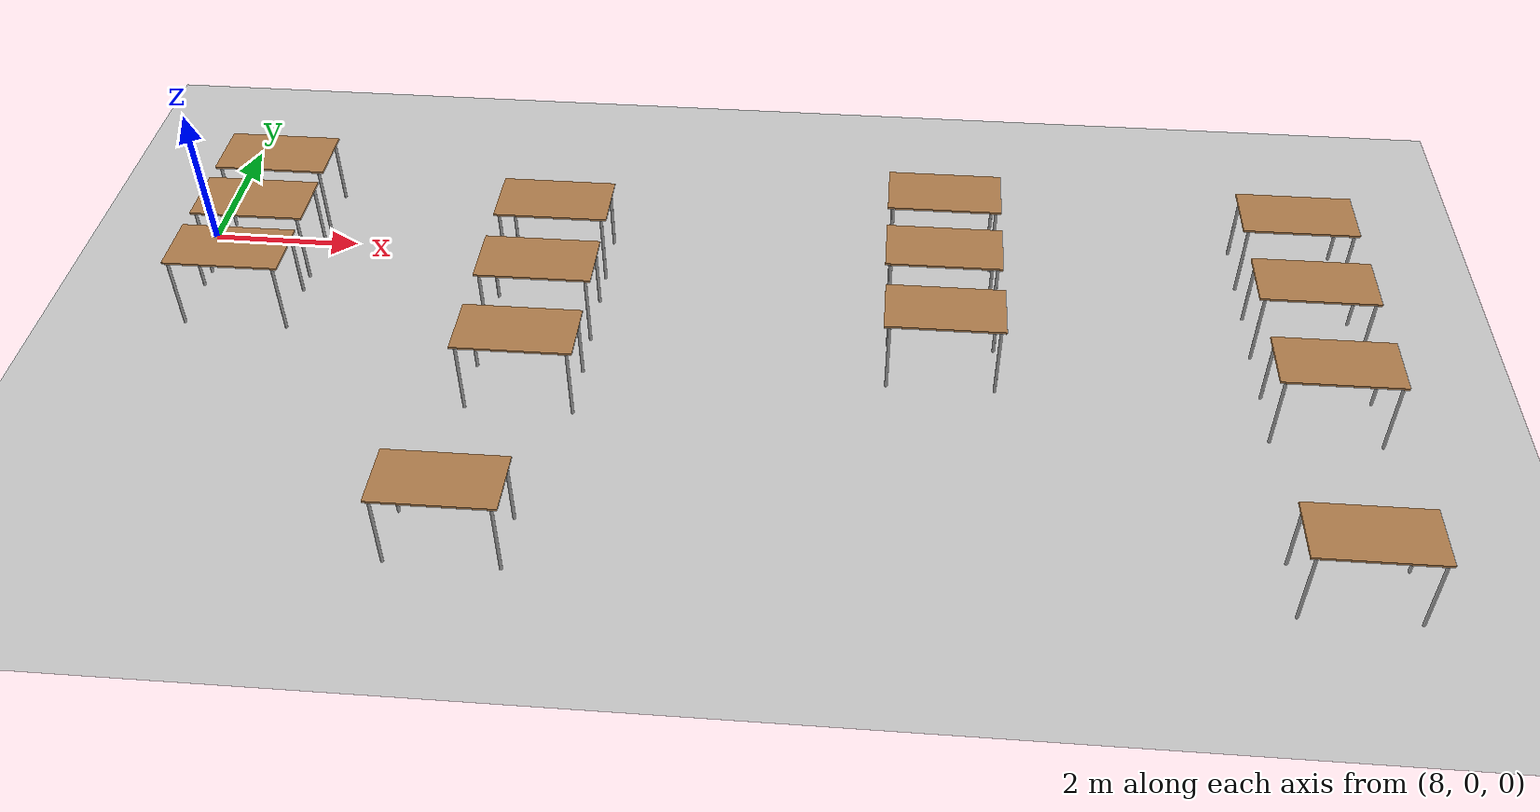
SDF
<sdf version="1.7">
 <world name="default">
  <light name="sun" type="directional">
   <cast_shadows>0</cast_shadows>
   <pose>0 0 10 0 -0 0</pose>
   <diffuse>0.8 0.8 0.8 1</diffuse>
   <specular>0.2 0.2 0.2 1</specular>
   <attenuation>
    <range>1000</range>
    <constant>0.9</constant>
    <linear>0.01</linear>
    <quadratic>0.001</quadratic>
   </attenuation>
   <direction>-0.5 0.1 -0.9</direction>
   <spot><inner_angle>0</inner_angle><outer_angle>0</outer_angle><falloff>0</falloff></spot>
  </light>
  <plugin name="ActorPosesPlugin" filename="libActorPosesPlugin.so"/>
  <model name="ground_plane">
   <static>1</static>
   <link name="link">
    <collision name="collision">
     <geometry><plane><normal>0 0 1</normal><size>100 100</size></plane></geometry>
     <surface><friction><ode><mu>100</mu><mu2>50</mu2></ode></friction></surface>
    </collision>
    <visual name="visual">
     <cast_shadows>0</cast_shadows>
     <geometry><plane><normal>0 0 1</normal><size>100 100</size></plane></geometry>
     <material>
      <script><uri>file://media/materials/scripts/gazebo.material</uri><name>Gazebo/Grey</name></script>
     </material>
    </visual>
   </link>
  </model>
  <gravity>0 0 -9.8</gravity>
  <magnetic_field>6e-06 2.3e-05 -4.2e-05</magnetic_field>
  <atmosphere type="adiabatic"/>
  <physics name="default_physics" default="0" type="ode">
   <max_step_size>0.001</max_step_size>
   <real_time_factor>1</real_time_factor>
   <real_time_update_rate>1000</real_time_update_rate>
  </physics>
  <scene><ambient>0.4 0.4 0.4 1</ambient><background>0.7 0.7 0.7 1</background><shadows>0</shadows></scene>
  <spherical_coordinates>
   <surface_model>EARTH_WGS84</surface_model>
   <latitude_deg>0</latitude_deg>
   <longitude_deg>0</longitude_deg>
   <elevation>0</elevation>
   <heading_deg>0</heading_deg>
  </spherical_coordinates>
  <model name="table">
   <static>1</static>
   <link name="link">
    <collision name="surface">
     <pose>0 0 1 0 -0 0</pose>
     <geometry><box><size>1.5 0.8 0.03</size></box></geometry>
     <surface><friction><ode><mu>0.6</mu><mu2>0.6</mu2></ode></friction></surface>
    </collision>
    <visual name="visual1">
     <pose>0 0 1 0 -0 0</pose>
     <geometry><box><size>1.5 0.8 0.03</size></box></geometry>
     <material>
      <script><uri>file://media/materials/scripts/gazebo.material</uri><name>Gazebo/Wood</name></script>
     </material>
    </visual>
    <collision name="front_left_leg">
     <pose>0.68 0.38 0.5 0 -0 0</pose>
     <geometry><cylinder><radius>0.02</radius><length>1</length></cylinder></geometry>
    </collision>
    <visual name="front_left_leg">
     <pose>0.68 0.38 0.5 0 -0 0</pose>
     <geometry><cylinder><radius>0.02</radius><length>1</length></cylinder></geometry>
     <material>
      <script><uri>file://media/materials/scripts/gazebo.material</uri><name>Gazebo/Grey</name></script>
     </material>
    </visual>
    <collision name="front_right_leg">
     <pose>0.68 -0.38 0.5 0 -0 0</pose>
     <geometry><cylinder><radius>0.02</radius><length>1</length></cylinder></geometry>
    </collision>
    <visual name="front_right_leg">
     <pose>0.68 -0.38 0.5 0 -0 0</pose>
     <geometry><cylinder><radius>0.02</radius><length>1</length></cylinder></geometry>
     <material>
      <script><uri>file://media/materials/scripts/gazebo.material</uri><name>Gazebo/Grey</name></script>
     </material>
    </visual>
    <collision name="back_right_leg">
     <pose>-0.68 -0.38 0.5 0 -0 0</pose>
     <geometry><cylinder><radius>0.02</radius><length>1</length></cylinder></geometry>
    </collision>
    <visual name="back_right_leg">
     <pose>-0.68 -0.38 0.5 0 -0 0</pose>
     <geometry><cylinder><radius>0.02</radius><length>1</length></cylinder></geometry>
     <material>
      <script><uri>file://media/materials/scripts/gazebo.material</uri><name>Gazebo/Grey</name></script>
     </material>
    </visual>
    <collision name="back_left_leg">
     <pose>-0.68 0.38 0.5 0 -0 0</pose>
     <geometry><cylinder><radius>0.02</radius><length>1</length></cylinder></geometry>
    </collision>
    <visual name="back_left_leg">
     <pose>-0.68 0.38 0.5 0 -0 0</pose>
     <geometry><cylinder><radius>0.02</radius><length>1</length></cylinder></geometry>
     <material>
      <script><uri>file://media/materials/scripts/gazebo.material</uri><name>Gazebo/Grey</name></script>
     </material>
    </visual>
   </link>
   <pose>18.0835 -1.89229 0 0 -0 0</pose>
  </model>
  <model name="table_0">
   <static>1</static>
   <link name="link">
    <collision name="surface">
     <pose>0 0 1 0 -0 0</pose>
     <geometry><box><size>1.5 0.8 0.03</size></box></geometry>
     <surface><friction><ode><mu>0.6</mu><mu2>0.6</mu2></ode></friction></surface>
    </collision>
    <visual name="visual1">
     <pose>0 0 1 0 -0 0</pose>
     <geometry><box><size>1.5 0.8 0.03</size></box></geometry>
     <material>
      <script><uri>file://media/materials/scripts/gazebo.material</uri><name>Gazebo/Wood</name></script>
     </material>
    </visual>
    <collision name="front_left_leg">
     <pose>0.68 0.38 0.5 0 -0 0</pose>
     <geometry><cylinder><radius>0.02</radius><length>1</length></cylinder></geometry>
    </collision>
    <visual name="front_left_leg">
     <pose>0.68 0.38 0.5 0 -0 0</pose>
     <geometry><cylinder><radius>0.02</radius><length>1</length></cylinder></geometry>
     <material>
      <script><uri>file://media/materials/scripts/gazebo.material</uri><name>Gazebo/Grey</name></script>
     </material>
    </visual>
    <collision name="front_right_leg">
     <pose>0.68 -0.38 0.5 0 -0 0</pose>
     <geometry><cylinder><radius>0.02</radius><length>1</length></cylinder></geometry>
    </collision>
    <visual name="front_right_leg">
     <pose>0.68 -0.38 0.5 0 -0 0</pose>
     <geometry><cylinder><radius>0.02</radius><length>1</length></cylinder></geometry>
     <material>
      <script><uri>file://media/materials/scripts/gazebo.material</uri><name>Gazebo/Grey</name></script>
     </material>
    </visual>
    <collision name="back_right_leg">
     <pose>-0.68 -0.38 0.5 0 -0 0</pose>
     <geometry><cylinder><radius>0.02</radius><length>1</length></cylinder></geometry>
    </collision>
    <visual name="back_right_leg">
     <pose>-0.68 -0.38 0.5 0 -0 0</pose>
     <geometry><cylinder><radius>0.02</radius><length>1</length></cylinder></geometry>
     <material>
      <script><uri>file://media/materials/scripts/gazebo.material</uri><name>Gazebo/Grey</name></script>
     </material>
    </visual>
    <collision name="back_left_leg">
     <pose>-0.68 0.38 0.5 0 -0 0</pose>
     <geometry><cylinder><radius>0.02</radius><length>1</length></cylinder></geometry>
    </collision>
    <visual name="back_left_leg">
     <pose>-0.68 0.38 0.5 0 -0 0</pose>
     <geometry><cylinder><radius>0.02</radius><length>1</length></cylinder></geometry>
     <material>
      <script><uri>file://media/materials/scripts/gazebo.material</uri><name>Gazebo/Grey</name></script>
     </material>
    </visual>
   </link>
   <pose>8.861 -1.41423 0 0 -0 0</pose>
  </model>
  <model name="table_clone">
   <static>1</static>
   <link name="link">
    <collision name="surface">
     <pose>0 0 1 0 -0 0</pose>
     <geometry><box><size>1.5 0.8 0.03</size></box></geometry>
     <surface><friction><ode><mu>0.6</mu><mu2>0.6</mu2></ode></friction></surface>
    </collision>
    <visual name="visual1">
     <pose>0 0 1 0 -0 0</pose>
     <geometry><box><size>1.5 0.8 0.03</size></box></geometry>
     <material>
      <script><uri>file://media/materials/scripts/gazebo.material</uri><name>Gazebo/Wood</name></script>
     </material>
    </visual>
    <collision name="front_left_leg">
     <pose>0.68 0.38 0.5 0 -0 0</pose>
     <geometry><cylinder><radius>0.02</radius><length>1</length></cylinder></geometry>
    </collision>
    <visual name="front_left_leg">
     <pose>0.68 0.38 0.5 0 -0 0</pose>
     <geometry><cylinder><radius>0.02</radius><length>1</length></cylinder></geometry>
     <material>
      <script><uri>file://media/materials/scripts/gazebo.material</uri><name>Gazebo/Grey</name></script>
     </material>
    </visual>
    <collision name="front_right_leg">
     <pose>0.68 -0.38 0.5 0 -0 0</pose>
     <geometry><cylinder><radius>0.02</radius><length>1</length></cylinder></geometry>
    </collision>
    <visual name="front_right_leg">
     <pose>0.68 -0.38 0.5 0 -0 0</pose>
     <geometry><cylinder><radius>0.02</radius><length>1</length></cylinder></geometry>
     <material>
      <script><uri>file://media/materials/scripts/gazebo.material</uri><name>Gazebo/Grey</name></script>
     </material>
    </visual>
    <collision name="back_right_leg">
     <pose>-0.68 -0.38 0.5 0 -0 0</pose>
     <geometry><cylinder><radius>0.02</radius><length>1</length></cylinder></geometry>
    </collision>
    <visual name="back_right_leg">
     <pose>-0.68 -0.38 0.5 0 -0 0</pose>
     <geometry><cylinder><radius>0.02</radius><length>1</length></cylinder></geometry>
     <material>
      <script><uri>file://media/materials/scripts/gazebo.material</uri><name>Gazebo/Grey</name></script>
     </material>
    </visual>
    <collision name="back_left_leg">
     <pose>-0.68 0.38 0.5 0 -0 0</pose>
     <geometry><cylinder><radius>0.02</radius><length>1</length></cylinder></geometry>
    </collision>
    <visual name="back_left_leg">
     <pose>-0.68 0.38 0.5 0 -0 0</pose>
     <geometry><cylinder><radius>0.02</radius><length>1</length></cylinder></geometry>
     <material>
      <script><uri>file://media/materials/scripts/gazebo.material</uri><name>Gazebo/Grey</name></script>
     </material>
    </visual>
   </link>
   <pose>22.7297 -0.994147 0 0 -0 0</pose>
  </model>
  <model name="table_clone_0">
   <static>1</static>
   <link name="link">
    <collision name="surface">
     <pose>0 0 1 0 -0 0</pose>
     <geometry><box><size>1.5 0.8 0.03</size></box></geometry>
     <surface><friction><ode><mu>0.6</mu><mu2>0.6</mu2></ode></friction></surface>
    </collision>
    <visual name="visual1">
     <pose>0 0 1 0 -0 0</pose>
     <geometry><box><size>1.5 0.8 0.03</size></box></geometry>
     <material>
      <script><uri>file://media/materials/scripts/gazebo.material</uri><name>Gazebo/Wood</name></script>
     </material>
    </visual>
    <collision name="front_left_leg">
     <pose>0.68 0.38 0.5 0 -0 0</pose>
     <geometry><cylinder><radius>0.02</radius><length>1</length></cylinder></geometry>
    </collision>
    <visual name="front_left_leg">
     <pose>0.68 0.38 0.5 0 -0 0</pose>
     <geometry><cylinder><radius>0.02</radius><length>1</length></cylinder></geometry>
     <material>
      <script><uri>file://media/materials/scripts/gazebo.material</uri><name>Gazebo/Grey</name></script>
     </material>
    </visual>
    <collision name="front_right_leg">
     <pose>0.68 -0.38 0.5 0 -0 0</pose>
     <geometry><cylinder><radius>0.02</radius><length>1</length></cylinder></geometry>
    </collision>
    <visual name="front_right_leg">
     <pose>0.68 -0.38 0.5 0 -0 0</pose>
     <geometry><cylinder><radius>0.02</radius><length>1</length></cylinder></geometry>
     <material>
      <script><uri>file://media/materials/scripts/gazebo.material</uri><name>Gazebo/Grey</name></script>
     </material>
    </visual>
    <collision name="back_right_leg">
     <pose>-0.68 -0.38 0.5 0 -0 0</pose>
     <geometry><cylinder><radius>0.02</radius><length>1</length></cylinder></geometry>
    </collision>
    <visual name="back_right_leg">
     <pose>-0.68 -0.38 0.5 0 -0 0</pose>
     <geometry><cylinder><radius>0.02</radius><length>1</length></cylinder></geometry>
     <material>
      <script><uri>file://media/materials/scripts/gazebo.material</uri><name>Gazebo/Grey</name></script>
     </material>
    </visual>
    <collision name="back_left_leg">
     <pose>-0.68 0.38 0.5 0 -0 0</pose>
     <geometry><cylinder><radius>0.02</radius><length>1</length></cylinder></geometry>
    </collision>
    <visual name="back_left_leg">
     <pose>-0.68 0.38 0.5 0 -0 0</pose>
     <geometry><cylinder><radius>0.02</radius><length>1</length></cylinder></geometry>
     <material>
      <script><uri>file://media/materials/scripts/gazebo.material</uri><name>Gazebo/Grey</name></script>
     </material>
    </visual>
   </link>
   <pose>22.6623 -5.21389 0 0 -0 0</pose>
  </model>
  <model name="table_clone_1">
   <static>1</static>
   <link name="link">
    <collision name="surface">
     <pose>0 0 1 0 -0 0</pose>
     <geometry><box><size>1.5 0.8 0.03</size></box></geometry>
     <surface><friction><ode><mu>0.6</mu><mu2>0.6</mu2></ode></friction></surface>
    </collision>
    <visual name="visual1">
     <pose>0 0 1 0 -0 0</pose>
     <geometry><box><size>1.5 0.8 0.03</size></box></geometry>
     <material>
      <script><uri>file://media/materials/scripts/gazebo.material</uri><name>Gazebo/Wood</name></script>
     </material>
    </visual>
    <collision name="front_left_leg">
     <pose>0.68 0.38 0.5 0 -0 0</pose>
     <geometry><cylinder><radius>0.02</radius><length>1</length></cylinder></geometry>
    </collision>
    <visual name="front_left_leg">
     <pose>0.68 0.38 0.5 0 -0 0</pose>
     <geometry><cylinder><radius>0.02</radius><length>1</length></cylinder></geometry>
     <material>
      <script><uri>file://media/materials/scripts/gazebo.material</uri><name>Gazebo/Grey</name></script>
     </material>
    </visual>
    <collision name="front_right_leg">
     <pose>0.68 -0.38 0.5 0 -0 0</pose>
     <geometry><cylinder><radius>0.02</radius><length>1</length></cylinder></geometry>
    </collision>
    <visual name="front_right_leg">
     <pose>0.68 -0.38 0.5 0 -0 0</pose>
     <geometry><cylinder><radius>0.02</radius><length>1</length></cylinder></geometry>
     <material>
      <script><uri>file://media/materials/scripts/gazebo.material</uri><name>Gazebo/Grey</name></script>
     </material>
    </visual>
    <collision name="back_right_leg">
     <pose>-0.68 -0.38 0.5 0 -0 0</pose>
     <geometry><cylinder><radius>0.02</radius><length>1</length></cylinder></geometry>
    </collision>
    <visual name="back_right_leg">
     <pose>-0.68 -0.38 0.5 0 -0 0</pose>
     <geometry><cylinder><radius>0.02</radius><length>1</length></cylinder></geometry>
     <material>
      <script><uri>file://media/materials/scripts/gazebo.material</uri><name>Gazebo/Grey</name></script>
     </material>
    </visual>
    <collision name="back_left_leg">
     <pose>-0.68 0.38 0.5 0 -0 0</pose>
     <geometry><cylinder><radius>0.02</radius><length>1</length></cylinder></geometry>
    </collision>
    <visual name="back_left_leg">
     <pose>-0.68 0.38 0.5 0 -0 0</pose>
     <geometry><cylinder><radius>0.02</radius><length>1</length></cylinder></geometry>
     <material>
      <script><uri>file://media/materials/scripts/gazebo.material</uri><name>Gazebo/Grey</name></script>
     </material>
    </visual>
   </link>
   <pose>12.8735 -1.32859 0 0 -0 0</pose>
  </model>
  <model name="table_clone_2">
   <static>1</static>
   <link name="link">
    <collision name="surface">
     <pose>0 0 1 0 -0 0</pose>
     <geometry><box><size>1.5 0.8 0.03</size></box></geometry>
     <surface><friction><ode><mu>0.6</mu><mu2>0.6</mu2></ode></friction></surface>
    </collision>
    <visual name="visual1">
     <pose>0 0 1 0 -0 0</pose>
     <geometry><box><size>1.5 0.8 0.03</size></box></geometry>
     <material>
      <script><uri>file://media/materials/scripts/gazebo.material</uri><name>Gazebo/Wood</name></script>
     </material>
    </visual>
    <collision name="front_left_leg">
     <pose>0.68 0.38 0.5 0 -0 0</pose>
     <geometry><cylinder><radius>0.02</radius><length>1</length></cylinder></geometry>
    </collision>
    <visual name="front_left_leg">
     <pose>0.68 0.38 0.5 0 -0 0</pose>
     <geometry><cylinder><radius>0.02</radius><length>1</length></cylinder></geometry>
     <material>
      <script><uri>file://media/materials/scripts/gazebo.material</uri><name>Gazebo/Grey</name></script>
     </material>
    </visual>
    <collision name="front_right_leg">
     <pose>0.68 -0.38 0.5 0 -0 0</pose>
     <geometry><cylinder><radius>0.02</radius><length>1</length></cylinder></geometry>
    </collision>
    <visual name="front_right_leg">
     <pose>0.68 -0.38 0.5 0 -0 0</pose>
     <geometry><cylinder><radius>0.02</radius><length>1</length></cylinder></geometry>
     <material>
      <script><uri>file://media/materials/scripts/gazebo.material</uri><name>Gazebo/Grey</name></script>
     </material>
    </visual>
    <collision name="back_right_leg">
     <pose>-0.68 -0.38 0.5 0 -0 0</pose>
     <geometry><cylinder><radius>0.02</radius><length>1</length></cylinder></geometry>
    </collision>
    <visual name="back_right_leg">
     <pose>-0.68 -0.38 0.5 0 -0 0</pose>
     <geometry><cylinder><radius>0.02</radius><length>1</length></cylinder></geometry>
     <material>
      <script><uri>file://media/materials/scripts/gazebo.material</uri><name>Gazebo/Grey</name></script>
     </material>
    </visual>
    <collision name="back_left_leg">
     <pose>-0.68 0.38 0.5 0 -0 0</pose>
     <geometry><cylinder><radius>0.02</radius><length>1</length></cylinder></geometry>
    </collision>
    <visual name="back_left_leg">
     <pose>-0.68 0.38 0.5 0 -0 0</pose>
     <geometry><cylinder><radius>0.02</radius><length>1</length></cylinder></geometry>
     <material>
      <script><uri>file://media/materials/scripts/gazebo.material</uri><name>Gazebo/Grey</name></script>
     </material>
    </visual>
   </link>
   <pose>12.4984 -5.23786 0 0 -0 0</pose>
  </model>
  <model name="table_clone_3">
   <static>1</static>
   <link name="link">
    <collision name="surface">
     <pose>0 0 1 0 -0 0</pose>
     <geometry><box><size>1.5 0.8 0.03</size></box></geometry>
     <surface><friction><ode><mu>0.6</mu><mu2>0.6</mu2></ode></friction></surface>
    </collision>
    <visual name="visual1">
     <pose>0 0 1 0 -0 0</pose>
     <geometry><box><size>1.5 0.8 0.03</size></box></geometry>
     <material>
      <script><uri>file://media/materials/scripts/gazebo.material</uri><name>Gazebo/Wood</name></script>
     </material>
    </visual>
    <collision name="front_left_leg">
     <pose>0.68 0.38 0.5 0 -0 0</pose>
     <geometry><cylinder><radius>0.02</radius><length>1</length></cylinder></geometry>
    </collision>
    <visual name="front_left_leg">
     <pose>0.68 0.38 0.5 0 -0 0</pose>
     <geometry><cylinder><radius>0.02</radius><length>1</length></cylinder></geometry>
     <material>
      <script><uri>file://media/materials/scripts/gazebo.material</uri><name>Gazebo/Grey</name></script>
     </material>
    </visual>
    <collision name="front_right_leg">
     <pose>0.68 -0.38 0.5 0 -0 0</pose>
     <geometry><cylinder><radius>0.02</radius><length>1</length></cylinder></geometry>
    </collision>
    <visual name="front_right_leg">
     <pose>0.68 -0.38 0.5 0 -0 0</pose>
     <geometry><cylinder><radius>0.02</radius><length>1</length></cylinder></geometry>
     <material>
      <script><uri>file://media/materials/scripts/gazebo.material</uri><name>Gazebo/Grey</name></script>
     </material>
    </visual>
    <collision name="back_right_leg">
     <pose>-0.68 -0.38 0.5 0 -0 0</pose>
     <geometry><cylinder><radius>0.02</radius><length>1</length></cylinder></geometry>
    </collision>
    <visual name="back_right_leg">
     <pose>-0.68 -0.38 0.5 0 -0 0</pose>
     <geometry><cylinder><radius>0.02</radius><length>1</length></cylinder></geometry>
     <material>
      <script><uri>file://media/materials/scripts/gazebo.material</uri><name>Gazebo/Grey</name></script>
     </material>
    </visual>
    <collision name="back_left_leg">
     <pose>-0.68 0.38 0.5 0 -0 0</pose>
     <geometry><cylinder><radius>0.02</radius><length>1</length></cylinder></geometry>
    </collision>
    <visual name="back_left_leg">
     <pose>-0.68 0.38 0.5 0 -0 0</pose>
     <geometry><cylinder><radius>0.02</radius><length>1</length></cylinder></geometry>
     <material>
      <script><uri>file://media/materials/scripts/gazebo.material</uri><name>Gazebo/Grey</name></script>
     </material>
    </visual>
   </link>
   <pose>22.7128 0.380865 0 0 -0 0</pose>
  </model>
  <model name="table_clone_4">
   <static>1</static>
   <link name="link">
    <collision name="surface">
     <pose>0 0 1 0 -0 0</pose>
     <geometry><box><size>1.5 0.8 0.03</size></box></geometry>
     <surface><friction><ode><mu>0.6</mu><mu2>0.6</mu2></ode></friction></surface>
    </collision>
    <visual name="visual1">
     <pose>0 0 1 0 -0 0</pose>
     <geometry><box><size>1.5 0.8 0.03</size></box></geometry>
     <material>
      <script><uri>file://media/materials/scripts/gazebo.material</uri><name>Gazebo/Wood</name></script>
     </material>
    </visual>
    <collision name="front_left_leg">
     <pose>0.68 0.38 0.5 0 -0 0</pose>
     <geometry><cylinder><radius>0.02</radius><length>1</length></cylinder></geometry>
    </collision>
    <visual name="front_left_leg">
     <pose>0.68 0.38 0.5 0 -0 0</pose>
     <geometry><cylinder><radius>0.02</radius><length>1</length></cylinder></geometry>
     <material>
      <script><uri>file://media/materials/scripts/gazebo.material</uri><name>Gazebo/Grey</name></script>
     </material>
    </visual>
    <collision name="front_right_leg">
     <pose>0.68 -0.38 0.5 0 -0 0</pose>
     <geometry><cylinder><radius>0.02</radius><length>1</length></cylinder></geometry>
    </collision>
    <visual name="front_right_leg">
     <pose>0.68 -0.38 0.5 0 -0 0</pose>
     <geometry><cylinder><radius>0.02</radius><length>1</length></cylinder></geometry>
     <material>
      <script><uri>file://media/materials/scripts/gazebo.material</uri><name>Gazebo/Grey</name></script>
     </material>
    </visual>
    <collision name="back_right_leg">
     <pose>-0.68 -0.38 0.5 0 -0 0</pose>
     <geometry><cylinder><radius>0.02</radius><length>1</length></cylinder></geometry>
    </collision>
    <visual name="back_right_leg">
     <pose>-0.68 -0.38 0.5 0 -0 0</pose>
     <geometry><cylinder><radius>0.02</radius><length>1</length></cylinder></geometry>
     <material>
      <script><uri>file://media/materials/scripts/gazebo.material</uri><name>Gazebo/Grey</name></script>
     </material>
    </visual>
    <collision name="back_left_leg">
     <pose>-0.68 0.38 0.5 0 -0 0</pose>
     <geometry><cylinder><radius>0.02</radius><length>1</length></cylinder></geometry>
    </collision>
    <visual name="back_left_leg">
     <pose>-0.68 0.38 0.5 0 -0 0</pose>
     <geometry><cylinder><radius>0.02</radius><length>1</length></cylinder></geometry>
     <material>
      <script><uri>file://media/materials/scripts/gazebo.material</uri><name>Gazebo/Grey</name></script>
     </material>
    </visual>
   </link>
   <pose>12.8763 -0.068585 0 0 -0 0</pose>
  </model>
  <model name="table_clone_5">
   <static>1</static>
   <link name="link">
    <collision name="surface">
     <pose>0 0 1 0 -0 0</pose>
     <geometry><box><size>1.5 0.8 0.03</size></box></geometry>
     <surface><friction><ode><mu>0.6</mu><mu2>0.6</mu2></ode></friction></surface>
    </collision>
    <visual name="visual1">
     <pose>0 0 1 0 -0 0</pose>
     <geometry><box><size>1.5 0.8 0.03</size></box></geometry>
     <material>
      <script><uri>file://media/materials/scripts/gazebo.material</uri><name>Gazebo/Wood</name></script>
     </material>
    </visual>
    <collision name="front_left_leg">
     <pose>0.68 0.38 0.5 0 -0 0</pose>
     <geometry><cylinder><radius>0.02</radius><length>1</length></cylinder></geometry>
    </collision>
    <visual name="front_left_leg">
     <pose>0.68 0.38 0.5 0 -0 0</pose>
     <geometry><cylinder><radius>0.02</radius><length>1</length></cylinder></geometry>
     <material>
      <script><uri>file://media/materials/scripts/gazebo.material</uri><name>Gazebo/Grey</name></script>
     </material>
    </visual>
    <collision name="front_right_leg">
     <pose>0.68 -0.38 0.5 0 -0 0</pose>
     <geometry><cylinder><radius>0.02</radius><length>1</length></cylinder></geometry>
    </collision>
    <visual name="front_right_leg">
     <pose>0.68 -0.38 0.5 0 -0 0</pose>
     <geometry><cylinder><radius>0.02</radius><length>1</length></cylinder></geometry>
     <material>
      <script><uri>file://media/materials/scripts/gazebo.material</uri><name>Gazebo/Grey</name></script>
     </material>
    </visual>
    <collision name="back_right_leg">
     <pose>-0.68 -0.38 0.5 0 -0 0</pose>
     <geometry><cylinder><radius>0.02</radius><length>1</length></cylinder></geometry>
    </collision>
    <visual name="back_right_leg">
     <pose>-0.68 -0.38 0.5 0 -0 0</pose>
     <geometry><cylinder><radius>0.02</radius><length>1</length></cylinder></geometry>
     <material>
      <script><uri>file://media/materials/scripts/gazebo.material</uri><name>Gazebo/Grey</name></script>
     </material>
    </visual>
    <collision name="back_left_leg">
     <pose>-0.68 0.38 0.5 0 -0 0</pose>
     <geometry><cylinder><radius>0.02</radius><length>1</length></cylinder></geometry>
    </collision>
    <visual name="back_left_leg">
     <pose>-0.68 0.38 0.5 0 -0 0</pose>
     <geometry><cylinder><radius>0.02</radius><length>1</length></cylinder></geometry>
     <material>
      <script><uri>file://media/materials/scripts/gazebo.material</uri><name>Gazebo/Grey</name></script>
     </material>
    </visual>
   </link>
   <pose>12.8746 -2.70009 0 0 -0 0</pose>
  </model>
  <model name="table_clone_6">
   <static>1</static>
   <link name="link">
    <collision name="surface">
     <pose>0 0 1 0 -0 0</pose>
     <geometry><box><size>1.5 0.8 0.03</size></box></geometry>
     <surface><friction><ode><mu>0.6</mu><mu2>0.6</mu2></ode></friction></surface>
    </collision>
    <visual name="visual1">
     <pose>0 0 1 0 -0 0</pose>
     <geometry><box><size>1.5 0.8 0.03</size></box></geometry>
     <material>
      <script><uri>file://media/materials/scripts/gazebo.material</uri><name>Gazebo/Wood</name></script>
     </material>
    </visual>
    <collision name="front_left_leg">
     <pose>0.68 0.38 0.5 0 -0 0</pose>
     <geometry><cylinder><radius>0.02</radius><length>1</length></cylinder></geometry>
    </collision>
    <visual name="front_left_leg">
     <pose>0.68 0.38 0.5 0 -0 0</pose>
     <geometry><cylinder><radius>0.02</radius><length>1</length></cylinder></geometry>
     <material>
      <script><uri>file://media/materials/scripts/gazebo.material</uri><name>Gazebo/Grey</name></script>
     </material>
    </visual>
    <collision name="front_right_leg">
     <pose>0.68 -0.38 0.5 0 -0 0</pose>
     <geometry><cylinder><radius>0.02</radius><length>1</length></cylinder></geometry>
    </collision>
    <visual name="front_right_leg">
     <pose>0.68 -0.38 0.5 0 -0 0</pose>
     <geometry><cylinder><radius>0.02</radius><length>1</length></cylinder></geometry>
     <material>
      <script><uri>file://media/materials/scripts/gazebo.material</uri><name>Gazebo/Grey</name></script>
     </material>
    </visual>
    <collision name="back_right_leg">
     <pose>-0.68 -0.38 0.5 0 -0 0</pose>
     <geometry><cylinder><radius>0.02</radius><length>1</length></cylinder></geometry>
    </collision>
    <visual name="back_right_leg">
     <pose>-0.68 -0.38 0.5 0 -0 0</pose>
     <geometry><cylinder><radius>0.02</radius><length>1</length></cylinder></geometry>
     <material>
      <script><uri>file://media/materials/scripts/gazebo.material</uri><name>Gazebo/Grey</name></script>
     </material>
    </visual>
    <collision name="back_left_leg">
     <pose>-0.68 0.38 0.5 0 -0 0</pose>
     <geometry><cylinder><radius>0.02</radius><length>1</length></cylinder></geometry>
    </collision>
    <visual name="back_left_leg">
     <pose>-0.68 0.38 0.5 0 -0 0</pose>
     <geometry><cylinder><radius>0.02</radius><length>1</length></cylinder></geometry>
     <material>
      <script><uri>file://media/materials/scripts/gazebo.material</uri><name>Gazebo/Grey</name></script>
     </material>
    </visual>
   </link>
   <pose>22.7547 -2.50426 0 0 -0 0</pose>
  </model>
  <model name="table_clone_7">
   <static>1</static>
   <link name="link">
    <collision name="surface">
     <pose>0 0 1 0 -0 0</pose>
     <geometry><box><size>1.5 0.8 0.03</size></box></geometry>
     <surface><friction><ode><mu>0.6</mu><mu2>0.6</mu2></ode></friction></surface>
    </collision>
    <visual name="visual1">
     <pose>0 0 1 0 -0 0</pose>
     <geometry><box><size>1.5 0.8 0.03</size></box></geometry>
     <material>
      <script><uri>file://media/materials/scripts/gazebo.material</uri><name>Gazebo/Wood</name></script>
     </material>
    </visual>
    <collision name="front_left_leg">
     <pose>0.68 0.38 0.5 0 -0 0</pose>
     <geometry><cylinder><radius>0.02</radius><length>1</length></cylinder></geometry>
    </collision>
    <visual name="front_left_leg">
     <pose>0.68 0.38 0.5 0 -0 0</pose>
     <geometry><cylinder><radius>0.02</radius><length>1</length></cylinder></geometry>
     <material>
      <script><uri>file://media/materials/scripts/gazebo.material</uri><name>Gazebo/Grey</name></script>
     </material>
    </visual>
    <collision name="front_right_leg">
     <pose>0.68 -0.38 0.5 0 -0 0</pose>
     <geometry><cylinder><radius>0.02</radius><length>1</length></cylinder></geometry>
    </collision>
    <visual name="front_right_leg">
     <pose>0.68 -0.38 0.5 0 -0 0</pose>
     <geometry><cylinder><radius>0.02</radius><length>1</length></cylinder></geometry>
     <material>
      <script><uri>file://media/materials/scripts/gazebo.material</uri><name>Gazebo/Grey</name></script>
     </material>
    </visual>
    <collision name="back_right_leg">
     <pose>-0.68 -0.38 0.5 0 -0 0</pose>
     <geometry><cylinder><radius>0.02</radius><length>1</length></cylinder></geometry>
    </collision>
    <visual name="back_right_leg">
     <pose>-0.68 -0.38 0.5 0 -0 0</pose>
     <geometry><cylinder><radius>0.02</radius><length>1</length></cylinder></geometry>
     <material>
      <script><uri>file://media/materials/scripts/gazebo.material</uri><name>Gazebo/Grey</name></script>
     </material>
    </visual>
    <collision name="back_left_leg">
     <pose>-0.68 0.38 0.5 0 -0 0</pose>
     <geometry><cylinder><radius>0.02</radius><length>1</length></cylinder></geometry>
    </collision>
    <visual name="back_left_leg">
     <pose>-0.68 0.38 0.5 0 -0 0</pose>
     <geometry><cylinder><radius>0.02</radius><length>1</length></cylinder></geometry>
     <material>
      <script><uri>file://media/materials/scripts/gazebo.material</uri><name>Gazebo/Grey</name></script>
     </material>
    </visual>
   </link>
   <pose>18.0674 -0.679845 0 0 -0 0</pose>
  </model>
  <model name="table_clone_8">
   <static>1</static>
   <link name="link">
    <collision name="surface">
     <pose>0 0 1 0 -0 0</pose>
     <geometry><box><size>1.5 0.8 0.03</size></box></geometry>
     <surface><friction><ode><mu>0.6</mu><mu2>0.6</mu2></ode></friction></surface>
    </collision>
    <visual name="visual1">
     <pose>0 0 1 0 -0 0</pose>
     <geometry><box><size>1.5 0.8 0.03</size></box></geometry>
     <material>
      <script><uri>file://media/materials/scripts/gazebo.material</uri><name>Gazebo/Wood</name></script>
     </material>
    </visual>
    <collision name="front_left_leg">
     <pose>0.68 0.38 0.5 0 -0 0</pose>
     <geometry><cylinder><radius>0.02</radius><length>1</length></cylinder></geometry>
    </collision>
    <visual name="front_left_leg">
     <pose>0.68 0.38 0.5 0 -0 0</pose>
     <geometry><cylinder><radius>0.02</radius><length>1</length></cylinder></geometry>
     <material>
      <script><uri>file://media/materials/scripts/gazebo.material</uri><name>Gazebo/Grey</name></script>
     </material>
    </visual>
    <collision name="front_right_leg">
     <pose>0.68 -0.38 0.5 0 -0 0</pose>
     <geometry><cylinder><radius>0.02</radius><length>1</length></cylinder></geometry>
    </collision>
    <visual name="front_right_leg">
     <pose>0.68 -0.38 0.5 0 -0 0</pose>
     <geometry><cylinder><radius>0.02</radius><length>1</length></cylinder></geometry>
     <material>
      <script><uri>file://media/materials/scripts/gazebo.material</uri><name>Gazebo/Grey</name></script>
     </material>
    </visual>
    <collision name="back_right_leg">
     <pose>-0.68 -0.38 0.5 0 -0 0</pose>
     <geometry><cylinder><radius>0.02</radius><length>1</length></cylinder></geometry>
    </collision>
    <visual name="back_right_leg">
     <pose>-0.68 -0.38 0.5 0 -0 0</pose>
     <geometry><cylinder><radius>0.02</radius><length>1</length></cylinder></geometry>
     <material>
      <script><uri>file://media/materials/scripts/gazebo.material</uri><name>Gazebo/Grey</name></script>
     </material>
    </visual>
    <collision name="back_left_leg">
     <pose>-0.68 0.38 0.5 0 -0 0</pose>
     <geometry><cylinder><radius>0.02</radius><length>1</length></cylinder></geometry>
    </collision>
    <visual name="back_left_leg">
     <pose>-0.68 0.38 0.5 0 -0 0</pose>
     <geometry><cylinder><radius>0.02</radius><length>1</length></cylinder></geometry>
     <material>
      <script><uri>file://media/materials/scripts/gazebo.material</uri><name>Gazebo/Grey</name></script>
     </material>
    </visual>
   </link>
   <pose>18.0689 0.50126 0 0 -0 0</pose>
  </model>
  <model name="table_clone_9">
   <static>1</static>
   <link name="link">
    <collision name="surface">
     <pose>0 0 1 0 -0 0</pose>
     <geometry><box><size>1.5 0.8 0.03</size></box></geometry>
     <surface><friction><ode><mu>0.6</mu><mu2>0.6</mu2></ode></friction></surface>
    </collision>
    <visual name="visual1">
     <pose>0 0 1 0 -0 0</pose>
     <geometry><box><size>1.5 0.8 0.03</size></box></geometry>
     <material>
      <script><uri>file://media/materials/scripts/gazebo.material</uri><name>Gazebo/Wood</name></script>
     </material>
    </visual>
    <collision name="front_left_leg">
     <pose>0.68 0.38 0.5 0 -0 0</pose>
     <geometry><cylinder><radius>0.02</radius><length>1</length></cylinder></geometry>
    </collision>
    <visual name="front_left_leg">
     <pose>0.68 0.38 0.5 0 -0 0</pose>
     <geometry><cylinder><radius>0.02</radius><length>1</length></cylinder></geometry>
     <material>
      <script><uri>file://media/materials/scripts/gazebo.material</uri><name>Gazebo/Grey</name></script>
     </material>
    </visual>
    <collision name="front_right_leg">
     <pose>0.68 -0.38 0.5 0 -0 0</pose>
     <geometry><cylinder><radius>0.02</radius><length>1</length></cylinder></geometry>
    </collision>
    <visual name="front_right_leg">
     <pose>0.68 -0.38 0.5 0 -0 0</pose>
     <geometry><cylinder><radius>0.02</radius><length>1</length></cylinder></geometry>
     <material>
      <script><uri>file://media/materials/scripts/gazebo.material</uri><name>Gazebo/Grey</name></script>
     </material>
    </visual>
    <collision name="back_right_leg">
     <pose>-0.68 -0.38 0.5 0 -0 0</pose>
     <geometry><cylinder><radius>0.02</radius><length>1</length></cylinder></geometry>
    </collision>
    <visual name="back_right_leg">
     <pose>-0.68 -0.38 0.5 0 -0 0</pose>
     <geometry><cylinder><radius>0.02</radius><length>1</length></cylinder></geometry>
     <material>
      <script><uri>file://media/materials/scripts/gazebo.material</uri><name>Gazebo/Grey</name></script>
     </material>
    </visual>
    <collision name="back_left_leg">
     <pose>-0.68 0.38 0.5 0 -0 0</pose>
     <geometry><cylinder><radius>0.02</radius><length>1</length></cylinder></geometry>
    </collision>
    <visual name="back_left_leg">
     <pose>-0.68 0.38 0.5 0 -0 0</pose>
     <geometry><cylinder><radius>0.02</radius><length>1</length></cylinder></geometry>
     <material>
      <script><uri>file://media/materials/scripts/gazebo.material</uri><name>Gazebo/Grey</name></script>
     </material>
    </visual>
   </link>
   <pose>8.86538 -0.365797 0 0 -0 0</pose>
  </model>
  <model name="table_clone_10">
   <static>1</static>
   <link name="link">
    <collision name="surface">
     <pose>0 0 1 0 -0 0</pose>
     <geometry><box><size>1.5 0.8 0.03</size></box></geometry>
     <surface><friction><ode><mu>0.6</mu><mu2>0.6</mu2></ode></friction></surface>
    </collision>
    <visual name="visual1">
     <pose>0 0 1 0 -0 0</pose>
     <geometry><box><size>1.5 0.8 0.03</size></box></geometry>
     <material>
      <script><uri>file://media/materials/scripts/gazebo.material</uri><name>Gazebo/Wood</name></script>
     </material>
    </visual>
    <collision name="front_left_leg">
     <pose>0.68 0.38 0.5 0 -0 0</pose>
     <geometry><cylinder><radius>0.02</radius><length>1</length></cylinder></geometry>
    </collision>
    <visual name="front_left_leg">
     <pose>0.68 0.38 0.5 0 -0 0</pose>
     <geometry><cylinder><radius>0.02</radius><length>1</length></cylinder></geometry>
     <material>
      <script><uri>file://media/materials/scripts/gazebo.material</uri><name>Gazebo/Grey</name></script>
     </material>
    </visual>
    <collision name="front_right_leg">
     <pose>0.68 -0.38 0.5 0 -0 0</pose>
     <geometry><cylinder><radius>0.02</radius><length>1</length></cylinder></geometry>
    </collision>
    <visual name="front_right_leg">
     <pose>0.68 -0.38 0.5 0 -0 0</pose>
     <geometry><cylinder><radius>0.02</radius><length>1</length></cylinder></geometry>
     <material>
      <script><uri>file://media/materials/scripts/gazebo.material</uri><name>Gazebo/Grey</name></script>
     </material>
    </visual>
    <collision name="back_right_leg">
     <pose>-0.68 -0.38 0.5 0 -0 0</pose>
     <geometry><cylinder><radius>0.02</radius><length>1</length></cylinder></geometry>
    </collision>
    <visual name="back_right_leg">
     <pose>-0.68 -0.38 0.5 0 -0 0</pose>
     <geometry><cylinder><radius>0.02</radius><length>1</length></cylinder></geometry>
     <material>
      <script><uri>file://media/materials/scripts/gazebo.material</uri><name>Gazebo/Grey</name></script>
     </material>
    </visual>
    <collision name="back_left_leg">
     <pose>-0.68 0.38 0.5 0 -0 0</pose>
     <geometry><cylinder><radius>0.02</radius><length>1</length></cylinder></geometry>
    </collision>
    <visual name="back_left_leg">
     <pose>-0.68 0.38 0.5 0 -0 0</pose>
     <geometry><cylinder><radius>0.02</radius><length>1</length></cylinder></geometry>
     <material>
      <script><uri>file://media/materials/scripts/gazebo.material</uri><name>Gazebo/Grey</name></script>
     </material>
    </visual>
   </link>
   <pose>8.86127 0.673587 0 0 -0 0</pose>
  </model>
 </world>
</sdf>
